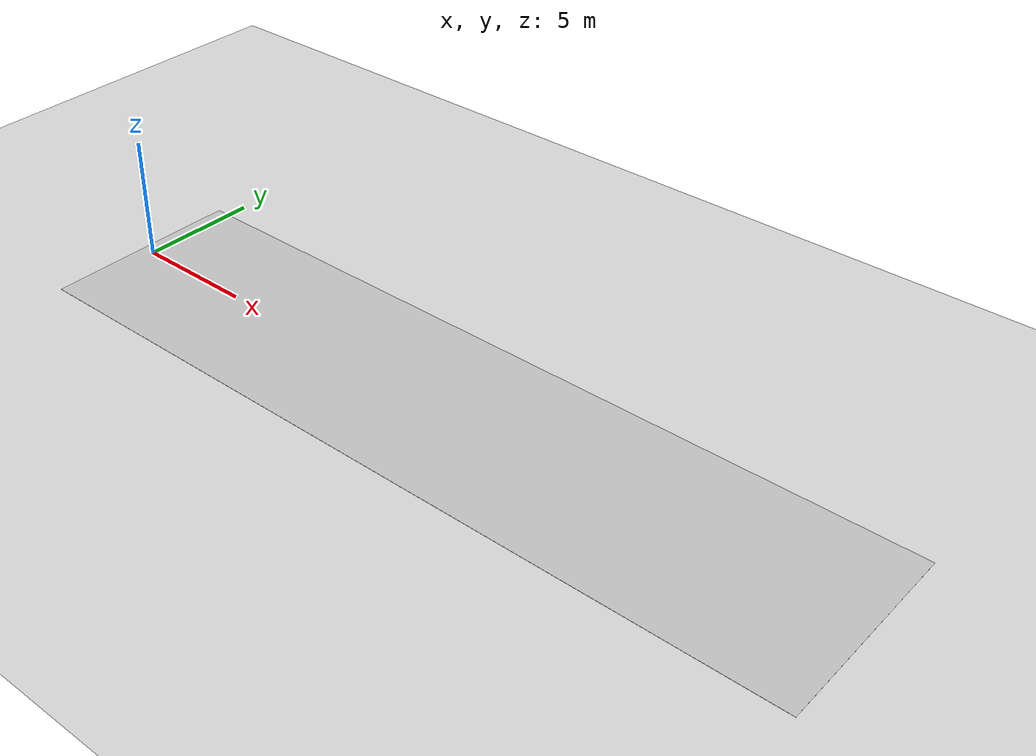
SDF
<?xml version="1.0" ?>
<sdf version="1.5">
  <world name='default'>
    <include>
      <uri>model://sun</uri>
    </include>

    <include>
      <uri>model://ground_plane</uri>
    </include>

    <include>
      <scale>0.001 0.001 0.001</scale>
      <uri>model://straight_road_world</uri>
      <pose>16 0.0 0.0 0 0 0.0</pose>
    </include>

  </world>
</sdf>

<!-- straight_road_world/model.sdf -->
<sdf version='1.4'>
    <model name='straight_road_world'>
      <static>1</static>
      <link name='link_ground'>
        <collision name='collision'>
          <geometry>
            <plane>
              <normal>0 0 1</normal>
              <size>8.3 8.3</size>
            </plane>
          </geometry>
          <surface>
            <friction>
              <ode>
                <mu>100</mu>
                <mu2>50</mu2>
              </ode>
            </friction>
            <bounce/>
            <contact>
              <ode/>
            </contact>
          </surface>
          <max_contacts>10</max_contacts>
        </collision>
        <visual name='visual_ground'>
          <cast_shadows>0</cast_shadows>
	        <pose>0 -0.02 .005 0 0 0</pose>
          <geometry>
            <plane>
              <normal>0 0 1</normal>
              <size>33.2 8.3</size>
            </plane>
          </geometry>
          <material>
            <script>
              <uri>model://straight_road_world/materials/scripts</uri>
              <uri>model://straight_road_world/materials/textures</uri>
              <name>Floor/Image</name>
            </script>
          </material>
        </visual>
        <velocity_decay>
          <linear>0</linear>
          <angular>0</angular>
        </velocity_decay>
        <self_collide>0</self_collide>
        <kinematic>0</kinematic>
        <gravity>1</gravity>
      </link>
      <pose>0 0 0 0 -0 0</pose>
    </model>
</sdf>
